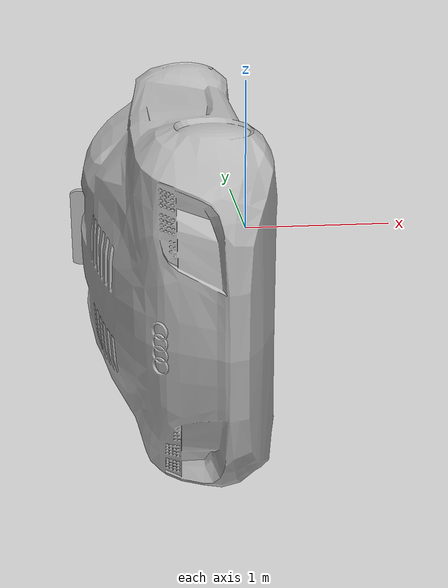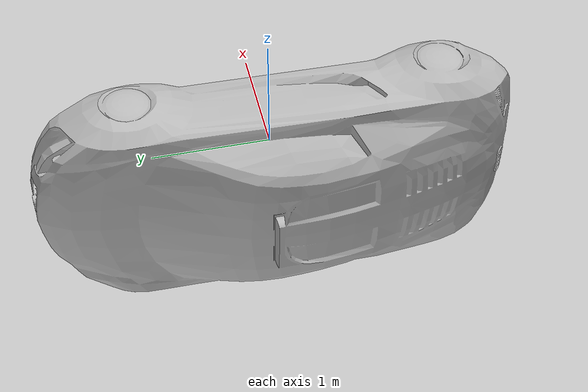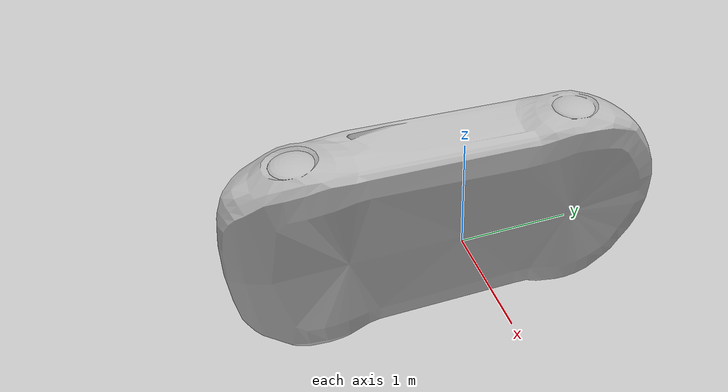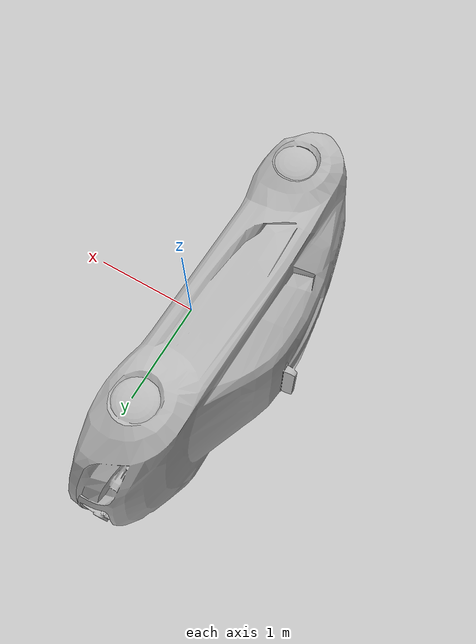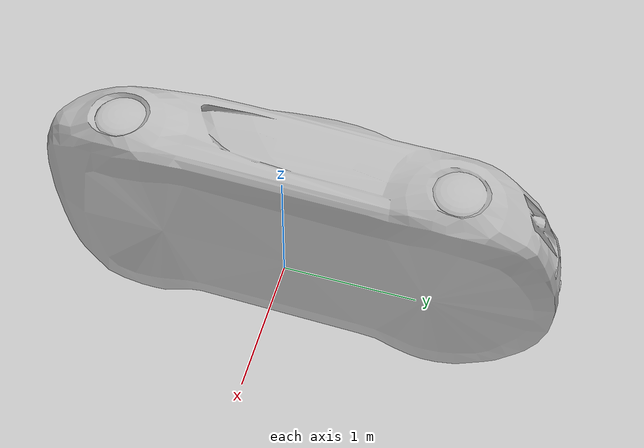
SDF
<?xml version="1.0"?>
<sdf version="1.9">
  <model name="taxi_holo_ROS_harmonic">
    <pose>0 0 0 0 0 0</pose>
    <static>false</static>

    <!-- Chassis link -->
    <link name="taxi_holo">
      <inertial>
        <mass>1.0</mass>
        <inertia>
          <ixx>1</ixx><ixy>0.0</ixy><ixz>0.0</ixz>
          <iyy>1</iyy><iyz>0.0</iyz>
          <izz>1</izz>
        </inertia>
      </inertial>

      <!-- collision & visual both use the same mesh -->
      <collision name="collision">
        <pose>0 0 0 0 0 1.57 </pose>
        <geometry>
          <mesh>
            <uri>model://taxi_holo_ROS_harmonic/meshes/taxi_holo.obj</uri>
          </mesh>
        </geometry>
      </collision>
      <visual name="visual">
        <pose>0 0 0 0 0 1.57 </pose>
        <geometry>
          <mesh>
            <uri>model://taxi_holo_ROS_harmonic/meshes/taxi_holo.obj</uri>
          </mesh>
        </geometry>
      </visual>
    </link>

    <!-- VelocityControl plugin: applies Twist directly to the chassis link -->
    <plugin
      filename="gz-sim-velocity-control-system"
      name="gz::sim::systems::VelocityControl">

      <topic>/taxi_holo/cmd_vel</topic>

    </plugin>

    <plugin
      filename="gz-sim-odometry-publisher-system"
      name="gz::sim::systems::OdometryPublisher">
      <odom_topic>/taxi_holo/odom</odom_topic>
      <robot_base_frame>taxi_holo</robot_base_frame>
      <odom_frame>odom</odom_frame>
      <odom_publish_frequency>20</odom_publish_frequency>
      <dimensions>3</dimensions>
    </plugin>

  </model>
</sdf>
